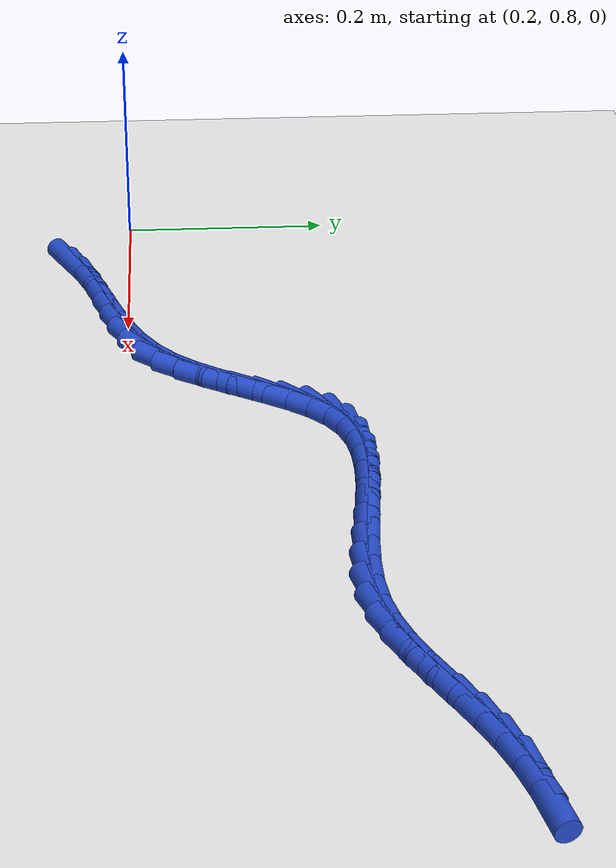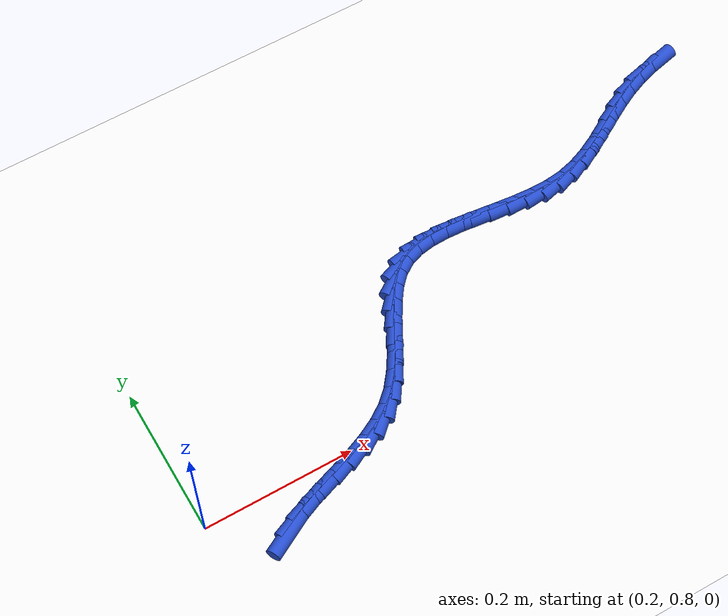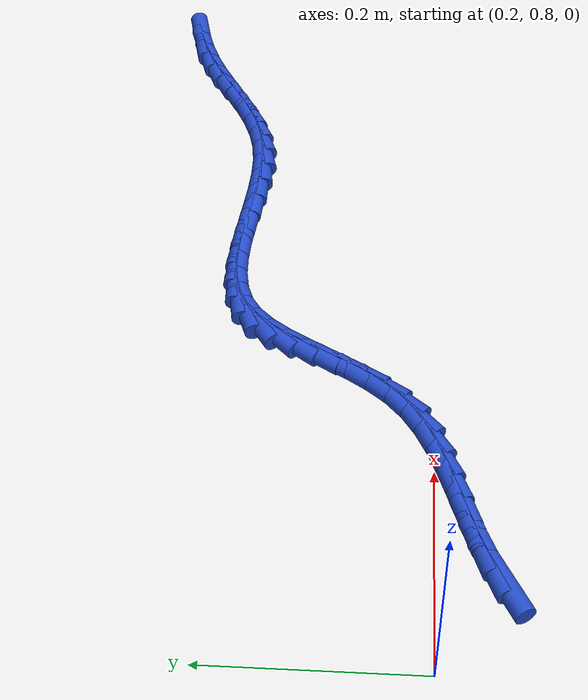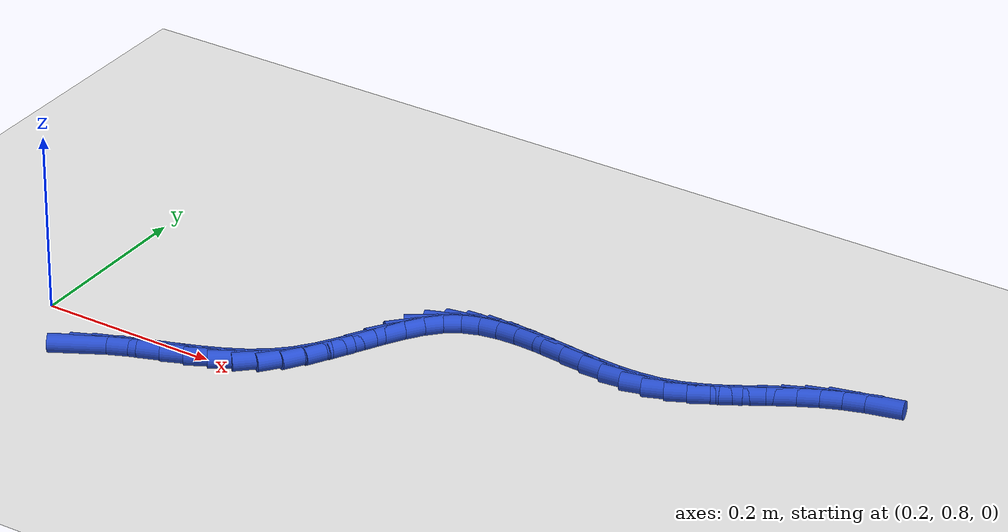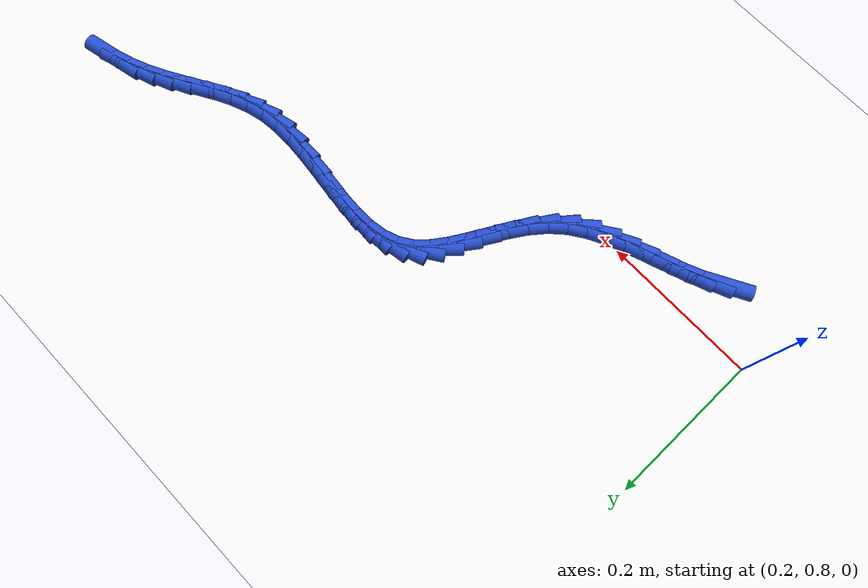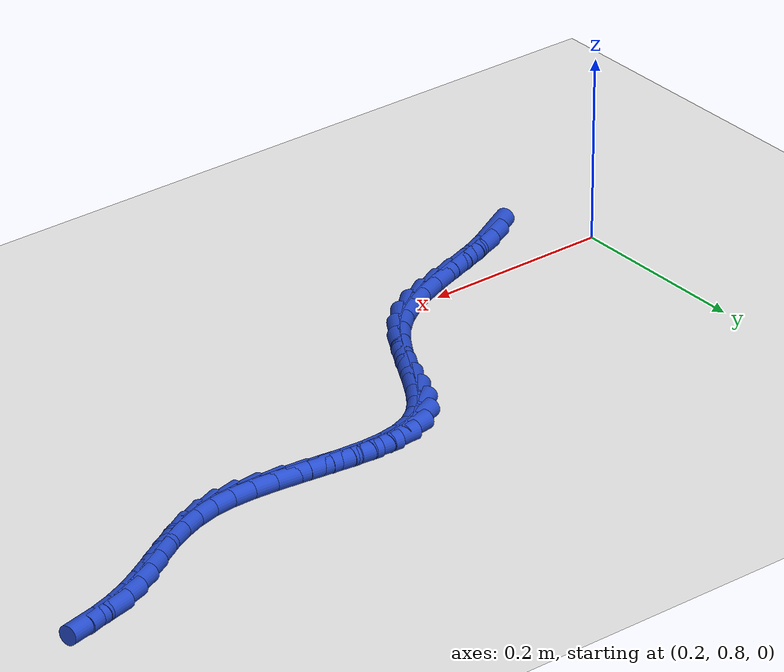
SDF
<sdf version="1.6">
 <world name="default">
  <model name="ground_plane">
   <static>1</static>
   <link name="link">
    <collision name="collision">
     <geometry><plane><normal>0 0 1</normal><size>100 100</size></plane></geometry>
     <surface><friction><ode><mu>100</mu><mu2>50</mu2></ode></friction></surface>
    </collision>
    <visual name="visual">
     <cast_shadows>0</cast_shadows>
     <geometry><plane><normal>0 0 1</normal><size>100 100</size></plane></geometry>
     <material>
      <script><uri>file://media/materials/scripts/gazebo.material</uri><name>Gazebo/WhiteGlow</name></script>
     </material>
    </visual>
   </link>
  </model>
  <model name="line">
   <link name="link_35">
    <pose>0.2873627900470792 0.7444341067492681 0.01 0 1.57 0.5011155887924594</pose>
    <collision name="collision">
     <geometry><cylinder><radius>0.01</radius><length>0.08</length></cylinder></geometry>
    </collision>
    <visual name="visual">
     <material>
      <script><name>Gazebo/Blue</name><uri>file://media/materials/scripts/gazebo.material</uri></script>
     </material>
     <geometry><cylinder><radius>0.01</radius><length>0.08</length></cylinder></geometry>
    </visual>
   </link>
   <link name="link_36">
    <pose>0.3068693041826186 0.7551188370474655 0.01 0 1.57 0.4090261510488583</pose>
    <collision name="collision">
     <geometry><cylinder><radius>0.01</radius><length>0.08</length></cylinder></geometry>
    </collision>
    <visual name="visual">
     <material>
      <script><name>Gazebo/Blue</name><uri>file://media/materials/scripts/gazebo.material</uri></script>
     </material>
     <geometry><cylinder><radius>0.01</radius><length>0.08</length></cylinder></geometry>
    </visual>
   </link>
   <link name="link_37">
    <pose>0.32826734317652434 0.764394328053778 0.01 0 1.57 0.35767513498691905</pose>
    <collision name="collision">
     <geometry><cylinder><radius>0.01</radius><length>0.08</length></cylinder></geometry>
    </collision>
    <visual name="visual">
     <material>
      <script><name>Gazebo/Blue</name><uri>file://media/materials/scripts/gazebo.material</uri></script>
     </material>
     <geometry><cylinder><radius>0.01</radius><length>0.08</length></cylinder></geometry>
    </visual>
   </link>
   <link name="link_38">
    <pose>0.3509467589130762 0.7728707804987246 0.01 0 1.57 0.34105130024242375</pose>
    <collision name="collision">
     <geometry><cylinder><radius>0.01</radius><length>0.08</length></cylinder></geometry>
    </collision>
    <visual name="visual">
     <material>
      <script><name>Gazebo/Blue</name><uri>file://media/materials/scripts/gazebo.material</uri></script>
     </material>
     <geometry><cylinder><radius>0.01</radius><length>0.08</length></cylinder></geometry>
    </visual>
   </link>
   <link name="link_39">
    <pose>0.37429740327655453 0.7811583951128248 0.01 0 1.57 0.3561310335240268</pose>
    <collision name="collision">
     <geometry><cylinder><radius>0.01</radius><length>0.08</length></cylinder></geometry>
    </collision>
    <visual name="visual">
     <material>
      <script><name>Gazebo/Blue</name><uri>file://media/materials/scripts/gazebo.material</uri></script>
     </material>
     <geometry><cylinder><radius>0.01</radius><length>0.08</length></cylinder></geometry>
    </visual>
   </link>
   <link name="link_40">
    <pose>0.39770912815123916 0.7898673726265978 0.01 0 1.57 0.4027561912875621</pose>
    <collision name="collision">
     <geometry><cylinder><radius>0.01</radius><length>0.08</length></cylinder></geometry>
    </collision>
    <visual name="visual">
     <material>
      <script><name>Gazebo/Blue</name><uri>file://media/materials/scripts/gazebo.material</uri></script>
     </material>
     <geometry><cylinder><radius>0.01</radius><length>0.08</length></cylinder></geometry>
    </visual>
   </link>
   <link name="link_41">
    <pose>0.42057178542140966 0.7996079137705627 0.01 0 1.57 0.48301341500667005</pose>
    <collision name="collision">
     <geometry><cylinder><radius>0.01</radius><length>0.08</length></cylinder></geometry>
    </collision>
    <visual name="visual">
     <material>
      <script><name>Gazebo/Blue</name><uri>file://media/materials/scripts/gazebo.material</uri></script>
     </material>
     <geometry><cylinder><radius>0.01</radius><length>0.08</length></cylinder></geometry>
    </visual>
   </link>
   <link name="link_42">
    <pose>0.4422752269713467 0.8109902192752396 0.01 0 1.57 0.5998849793796706</pose>
    <collision name="collision">
     <geometry><cylinder><radius>0.01</radius><length>0.08</length></cylinder></geometry>
    </collision>
    <visual name="visual">
     <material>
      <script><name>Gazebo/Blue</name><uri>file://media/materials/scripts/gazebo.material</uri></script>
     </material>
     <geometry><cylinder><radius>0.01</radius><length>0.08</length></cylinder></geometry>
    </visual>
   </link>
   <link name="link_43">
    <pose>0.4622093046853295 0.824624489871147 0.01 0 1.57 0.753157286381255</pose>
    <collision name="collision">
     <geometry><cylinder><radius>0.01</radius><length>0.08</length></cylinder></geometry>
    </collision>
    <visual name="visual">
     <material>
      <script><name>Gazebo/Blue</name><uri>file://media/materials/scripts/gazebo.material</uri></script>
     </material>
     <geometry><cylinder><radius>0.01</radius><length>0.08</length></cylinder></geometry>
    </visual>
   </link>
   <link name="link_44">
    <pose>0.4797816181430708 0.841098732018193 0.01 0 1.57 0.9020097063208894</pose>
    <collision name="collision">
     <geometry><cylinder><radius>0.01</radius><length>0.08</length></cylinder></geometry>
    </collision>
    <visual name="visual">
     <material>
      <script><name>Gazebo/Blue</name><uri>file://media/materials/scripts/gazebo.material</uri></script>
     </material>
     <geometry><cylinder><radius>0.01</radius><length>0.08</length></cylinder></geometry>
    </visual>
   </link>
   <link name="link_45">
    <pose>0.4949581384266521 0.8603026841519736 0.01 0 1.57 1.0027330679841202</pose>
    <collision name="collision">
     <geometry><cylinder><radius>0.01</radius><length>0.08</length></cylinder></geometry>
    </collision>
    <visual name="visual">
     <material>
      <script><name>Gazebo/Blue</name><uri>file://media/materials/scripts/gazebo.material</uri></script>
     </material>
     <geometry><cylinder><radius>0.01</radius><length>0.08</length></cylinder></geometry>
    </visual>
   </link>
   <link name="link_46">
    <pose>0.5083621012835805 0.8813041464511573 0.01 0 1.57 1.0577530732883769</pose>
    <collision name="collision">
     <geometry><cylinder><radius>0.01</radius><length>0.08</length></cylinder></geometry>
    </collision>
    <visual name="visual">
     <material>
      <script><name>Gazebo/Blue</name><uri>file://media/materials/scripts/gazebo.material</uri></script>
     </material>
     <geometry><cylinder><radius>0.01</radius><length>0.08</length></cylinder></geometry>
    </visual>
   </link>
   <link name="link_47">
    <pose>0.5206544337934746 0.9031237844324613 0.01 0 1.57 1.070456868649862</pose>
    <collision name="collision">
     <geometry><cylinder><radius>0.01</radius><length>0.08</length></cylinder></geometry>
    </collision>
    <visual name="visual">
     <material>
      <script><name>Gazebo/Blue</name><uri>file://media/materials/scripts/gazebo.material</uri></script>
     </material>
     <geometry><cylinder><radius>0.01</radius><length>0.08</length></cylinder></geometry>
    </visual>
   </link>
   <link name="link_48">
    <pose>0.5324960630359525 0.9247822636126031 0.01 0 1.57 1.0397079755922947</pose>
    <collision name="collision">
     <geometry><cylinder><radius>0.01</radius><length>0.08</length></cylinder></geometry>
    </collision>
    <visual name="visual">
     <material>
      <script><name>Gazebo/Blue</name><uri>file://media/materials/scripts/gazebo.material</uri></script>
     </material>
     <geometry><cylinder><radius>0.01</radius><length>0.08</length></cylinder></geometry>
    </visual>
   </link>
   <link name="link_49">
    <pose>0.5445479160906332 0.9453002495083006 0.01 0 1.57 0.9584564286713815</pose>
    <collision name="collision">
     <geometry><cylinder><radius>0.01</radius><length>0.08</length></cylinder></geometry>
    </collision>
    <visual name="visual">
     <material>
      <script><name>Gazebo/Blue</name><uri>file://media/materials/scripts/gazebo.material</uri></script>
     </material>
     <geometry><cylinder><radius>0.01</radius><length>0.08</length></cylinder></geometry>
    </visual>
   </link>
   <link name="link_50">
    <pose>0.5574709200371347 0.9636984076362707 0.01 0 1.57 0.8137535295504066</pose>
    <collision name="collision">
     <geometry><cylinder><radius>0.01</radius><length>0.08</length></cylinder></geometry>
    </collision>
    <visual name="visual">
     <material>
      <script><name>Gazebo/Blue</name><uri>file://media/materials/scripts/gazebo.material</uri></script>
     </material>
     <geometry><cylinder><radius>0.01</radius><length>0.08</length></cylinder></geometry>
    </visual>
   </link>
   <link name="link_51">
    <pose>0.5719260019550757 0.9789974035132312 0.01 0 1.57 0.5944971484550092</pose>
    <collision name="collision">
     <geometry><cylinder><radius>0.01</radius><length>0.08</length></cylinder></geometry>
    </collision>
    <visual name="visual">
     <material>
      <script><name>Gazebo/Blue</name><uri>file://media/materials/scripts/gazebo.material</uri></script>
     </material>
     <geometry><cylinder><radius>0.01</radius><length>0.08</length></cylinder></geometry>
    </visual>
   </link>
   <link name="link_52">
    <pose>0.5885592325579937 0.9902429411478045 0.01 0 1.57 0.35333270556785445</pose>
    <collision name="collision">
     <geometry><cylinder><radius>0.01</radius><length>0.08</length></cylinder></geometry>
    </collision>
    <visual name="visual">
     <material>
      <script><name>Gazebo/Blue</name><uri>file://media/materials/scripts/gazebo.material</uri></script>
     </material>
     <geometry><cylinder><radius>0.01</radius><length>0.08</length></cylinder></geometry>
    </visual>
   </link>
   <link name="link_53">
    <pose>0.6075598988486609 0.9972505746709178 0.01 0 1.57 0.16408694424527606</pose>
    <collision name="collision">
     <geometry><cylinder><radius>0.01</radius><length>0.08</length></cylinder></geometry>
    </collision>
    <visual name="visual">
     <material>
      <script><name>Gazebo/Blue</name><uri>file://media/materials/scripts/gazebo.material</uri></script>
     </material>
     <geometry><cylinder><radius>0.01</radius><length>0.08</length></cylinder></geometry>
    </visual>
   </link>
   <link name="link_54">
    <pose>0.6285856168144167 1.0007319212442285 0.01 0 1.57 0.031611582251225956</pose>
    <collision name="collision">
     <geometry><cylinder><radius>0.01</radius><length>0.08</length></cylinder></geometry>
    </collision>
    <visual name="visual">
     <material>
      <script><name>Gazebo/Blue</name><uri>file://media/materials/scripts/gazebo.material</uri></script>
     </material>
     <geometry><cylinder><radius>0.01</radius><length>0.08</length></cylinder></geometry>
    </visual>
   </link>
   <link name="link_55">
    <pose>0.6512640603207688 1.0014490616199532 0.01 0 1.57 -0.053581682121296104</pose>
    <collision name="collision">
     <geometry><cylinder><radius>0.01</radius><length>0.08</length></cylinder></geometry>
    </collision>
    <visual name="visual">
     <material>
      <script><name>Gazebo/Blue</name><uri>file://media/materials/scripts/gazebo.material</uri></script>
     </material>
     <geometry><cylinder><radius>0.01</radius><length>0.08</length></cylinder></geometry>
    </visual>
   </link>
   <link name="link_56">
    <pose>0.6752229032332245 1.000164076550309 0.01 0 1.57 -0.10119488661212647</pose>
    <collision name="collision">
     <geometry><cylinder><radius>0.01</radius><length>0.08</length></cylinder></geometry>
    </collision>
    <visual name="visual">
     <material>
      <script><name>Gazebo/Blue</name><uri>file://media/materials/scripts/gazebo.material</uri></script>
     </material>
     <geometry><cylinder><radius>0.01</radius><length>0.08</length></cylinder></geometry>
    </visual>
   </link>
   <link name="link_57">
    <pose>0.7000898194172918 0.9976390467875128 0.01 0 1.57 -0.11766958866068457</pose>
    <collision name="collision">
     <geometry><cylinder><radius>0.01</radius><length>0.08</length></cylinder></geometry>
    </collision>
    <visual name="visual">
     <material>
      <script><name>Gazebo/Blue</name><uri>file://media/materials/scripts/gazebo.material</uri></script>
     </material>
     <geometry><cylinder><radius>0.01</radius><length>0.08</length></cylinder></geometry>
    </visual>
   </link>
   <link name="link_58">
    <pose>0.7254924827384778 0.9946360530837816 0.01 0 1.57 -0.10594880198109499</pose>
    <collision name="collision">
     <geometry><cylinder><radius>0.01</radius><length>0.08</length></cylinder></geometry>
    </collision>
    <visual name="visual">
     <material>
      <script><name>Gazebo/Blue</name><uri>file://media/materials/scripts/gazebo.material</uri></script>
     </material>
     <geometry><cylinder><radius>0.01</radius><length>0.08</length></cylinder></geometry>
    </visual>
   </link>
   <link name="link_59">
    <pose>0.7510585670622897 0.9919171761913317 0.01 0 1.57 -0.06586929468810789</pose>
    <collision name="collision">
     <geometry><cylinder><radius>0.01</radius><length>0.08</length></cylinder></geometry>
    </collision>
    <visual name="visual">
     <material>
      <script><name>Gazebo/Blue</name><uri>file://media/materials/scripts/gazebo.material</uri></script>
     </material>
     <geometry><cylinder><radius>0.01</radius><length>0.08</length></cylinder></geometry>
    </visual>
   </link>
   <link name="link_60">
    <pose>0.7764157462542358 0.9902444968623805 0.01 0 1.57 0.005472954386778778</pose>
    <collision name="collision">
     <geometry><cylinder><radius>0.01</radius><length>0.08</length></cylinder></geometry>
    </collision>
    <visual name="visual">
     <material>
      <script><name>Gazebo/Blue</name><uri>file://media/materials/scripts/gazebo.material</uri></script>
     </material>
     <geometry><cylinder><radius>0.01</radius><length>0.08</length></cylinder></geometry>
    </visual>
   </link>
   <link name="link_61">
    <pose>0.8011916941798235 0.990380095849145 0.01 0 1.57 0.11310407802574506</pose>
    <collision name="collision">
     <geometry><cylinder><radius>0.01</radius><length>0.08</length></cylinder></geometry>
    </collision>
    <visual name="visual">
     <material>
      <script><name>Gazebo/Blue</name><uri>file://media/materials/scripts/gazebo.material</uri></script>
     </material>
     <geometry><cylinder><radius>0.01</radius><length>0.08</length></cylinder></geometry>
    </visual>
   </link>
   <link name="link_62">
    <pose>0.8250140847045598 0.9930860539038417 0.01 0 1.57 0.25232088774216166</pose>
    <collision name="collision">
     <geometry><cylinder><radius>0.01</radius><length>0.08</length></cylinder></geometry>
    </collision>
    <visual name="visual">
     <material>
      <script><name>Gazebo/Blue</name><uri>file://media/materials/scripts/gazebo.material</uri></script>
     </material>
     <geometry><cylinder><radius>0.01</radius><length>0.08</length></cylinder></geometry>
    </visual>
   </link>
   <link name="link_63">
    <pose>0.8476087252554636 0.9989113047158134 0.01 0 1.57 0.375611249669344</pose>
    <collision name="collision">
     <geometry><cylinder><radius>0.01</radius><length>0.08</length></cylinder></geometry>
    </collision>
    <visual name="visual">
     <material>
      <script><name>Gazebo/Blue</name><uri>file://media/materials/scripts/gazebo.material</uri></script>
     </material>
     <geometry><cylinder><radius>0.01</radius><length>0.08</length></cylinder></geometry>
    </visual>
   </link>
   <link name="link_64">
    <pose>0.8691596382474084 1.0074095345042915 0.01 0 1.57 0.46450104938704084</pose>
    <collision name="collision">
     <geometry><cylinder><radius>0.01</radius><length>0.08</length></cylinder></geometry>
    </collision>
    <visual name="visual">
     <material>
      <script><name>Gazebo/Blue</name><uri>file://media/materials/scripts/gazebo.material</uri></script>
     </material>
     <geometry><cylinder><radius>0.01</radius><length>0.08</length></cylinder></geometry>
    </visual>
   </link>
   <link name="link_65">
    <pose>0.8899844779458053 1.0178441797919737 0.01 0 1.57 0.5179611077099553</pose>
    <collision name="collision">
     <geometry><cylinder><radius>0.01</radius><length>0.08</length></cylinder></geometry>
    </collision>
    <visual name="visual">
     <material>
      <script><name>Gazebo/Blue</name><uri>file://media/materials/scripts/gazebo.material</uri></script>
     </material>
     <geometry><cylinder><radius>0.01</radius><length>0.08</length></cylinder></geometry>
    </visual>
   </link>
   <link name="link_66">
    <pose>0.9104009143171535 1.029478642998636 0.01 0 1.57 0.5368762598951242</pose>
    <collision name="collision">
     <geometry><cylinder><radius>0.01</radius><length>0.08</length></cylinder></geometry>
    </collision>
    <visual name="visual">
     <material>
      <script><name>Gazebo/Blue</name><uri>file://media/materials/scripts/gazebo.material</uri></script>
     </material>
     <geometry><cylinder><radius>0.01</radius><length>0.08</length></cylinder></geometry>
    </visual>
   </link>
   <link name="link_67">
    <pose>0.9307266173279529 1.0415763265440552 0.01 0 1.57 0.5220733342183242</pose>
    <collision name="collision">
     <geometry><cylinder><radius>0.01</radius><length>0.08</length></cylinder></geometry>
    </collision>
    <visual name="visual">
     <material>
      <script><name>Gazebo/Blue</name><uri>file://media/materials/scripts/gazebo.material</uri></script>
     </material>
     <geometry><cylinder><radius>0.01</radius><length>0.08</length></cylinder></geometry>
    </visual>
   </link>
   <link name="link_68">
    <pose>0.9512792569447036 1.0534006328480086 0.01 0 1.57 0.47367233573308287</pose>
    <collision name="collision">
     <geometry><cylinder><radius>0.01</radius><length>0.08</length></cylinder></geometry>
    </collision>
    <visual name="visual">
     <material>
      <script><name>Gazebo/Blue</name><uri>file://media/materials/scripts/gazebo.material</uri></script>
     </material>
     <geometry><cylinder><radius>0.01</radius><length>0.08</length></cylinder></geometry>
    </visual>
   </link>
   <link name="link_69">
    <pose>0.9723765031339049 1.0642149643302712 0.01 0 1.57 0.3953165295886112</pose>
    <collision name="collision">
     <geometry><cylinder><radius>0.01</radius><length>0.08</length></cylinder></geometry>
    </collision>
    <visual name="visual">
     <material>
      <script><name>Gazebo/Blue</name><uri>file://media/materials/scripts/gazebo.material</uri></script>
     </material>
     <geometry><cylinder><radius>0.01</radius><length>0.08</length></cylinder></geometry>
    </visual>
   </link>
   <link name="link_70">
    <pose>0.9942877302964807 1.073358156326137 0.01 0 1.57 0.31134802528914113</pose>
    <collision name="collision">
     <geometry><cylinder><radius>0.01</radius><length>0.08</length></cylinder></geometry>
    </collision>
    <visual name="visual">
     <material>
      <script><name>Gazebo/Blue</name><uri>file://media/materials/scripts/gazebo.material</uri></script>
     </material>
     <geometry><cylinder><radius>0.01</radius><length>0.08</length></cylinder></geometry>
    </visual>
   </link>
   <link name="link_71">
    <pose>1.0169695787998232 1.0806575039217872 0.01 0 1.57 0.23103541337111888</pose>
    <collision name="collision">
     <geometry><cylinder><radius>0.01</radius><length>0.08</length></cylinder></geometry>
    </collision>
    <visual name="visual">
     <material>
      <script><name>Gazebo/Blue</name><uri>file://media/materials/scripts/gazebo.material</uri></script>
     </material>
     <geometry><cylinder><radius>0.01</radius><length>0.08</length></cylinder></geometry>
    </visual>
   </link>
  </model>
 </world>
</sdf>
